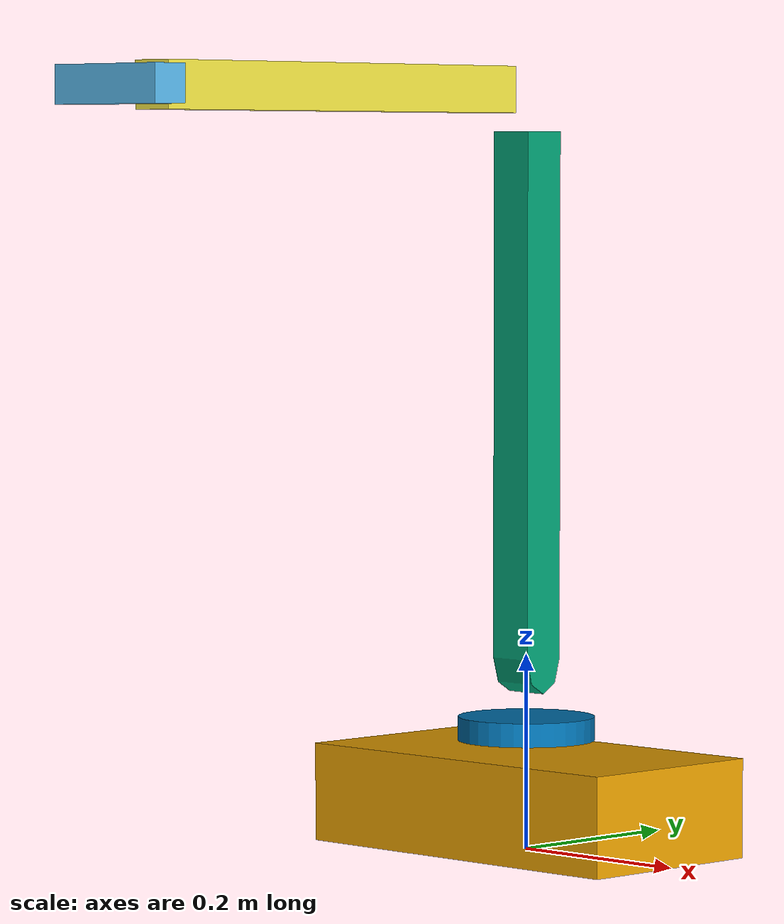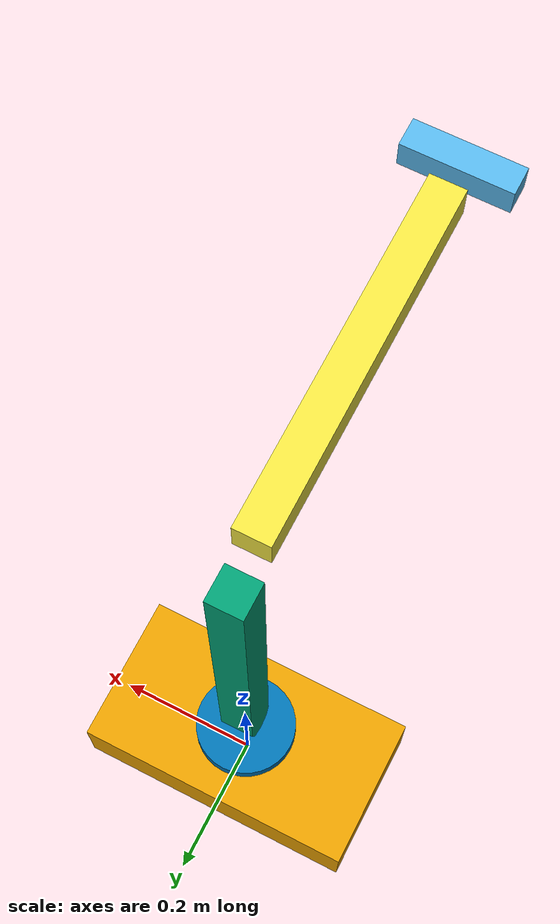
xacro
<?xml version="1.0"?>
<robot xmlns:xacro="http://www.ros.org/wiki/xacro" name="stick_rm_two">
    <xacro:arg name="initial_positions_file" default="initial_positions.yaml" />

    <!-- Import stick_rm_two urdf file -->
    <xacro:include filename="$(find stick_rm)/urdf/stick_rm_two.urdf" />

    <!-- Import control_xacro -->
    <xacro:include filename="stick_rm_two.ros2_control.xacro" />

    <xacro:stick_rm_two_ros2_control name="FakeSystem" initial_positions_file="$(arg initial_positions_file)"/>

</robot>

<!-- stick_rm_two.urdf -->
<robot name="stick_rm_two" version="1.0">

  <joint name="end_link_joint" type="revolute">
    <limit lower="-3.14000" upper="3.14000" effort="0.00000" velocity="0.00000"/>
    <origin rpy="0.00000 0.00000 0.00000" xyz="0.00000 -0.50000 0.02500"/>
    <parent link="link2_link"/>
    <child link="end_link"/>
    <axis xyz="1.00000 0.00000 0.00000"/>
  </joint>

  <joint name="link1_link_joint" type="revolute">
    <limit lower="-0.50000" upper="1.20000" effort="0.00000" velocity="0.00000"/>
    <origin rpy="0.00000 0.00000 0.00000" xyz="0.00000 0.00000 0.02551"/>
    <parent link="swivel_link"/>
    <child link="link1_link"/>
    <axis xyz="1.00000 0.00000 0.00000"/>
  </joint>

  <joint name="link2_link_joint" type="revolute">
    <limit lower="-1.50000" upper="1.10000" effort="0.00000" velocity="0.00000"/>
    <origin rpy="0.00000 0.00000 0.00000" xyz="0.00000 -0.02500 0.60000"/>
    <parent link="link1_link"/>
    <child link="link2_link"/>
    <axis xyz="1.00000 0.00000 0.00000"/>
  </joint>

  <joint name="swivel_link_joint" type="revolute">
    <limit lower="-1.57000" upper="1.57000" effort="0.00000" velocity="0.00000"/>
    <origin rpy="0.00000 0.00000 0.00000" xyz="0.00000 0.00000 0.12440"/>
    <parent link="body_link"/>
    <child link="swivel_link"/>
    <axis xyz="0.00000 0.00000 1.00000"/>
  </joint>

  <link name="body_link">
    <collision>
      <geometry>
        <mesh filename="package://stick_rm/meshes/stl/Cube.017.stl"/>
      </geometry>
    </collision>
    <visual>
      <geometry>
        <mesh filename="package://stick_rm/meshes/stl/Cube.010.stl"/>
      </geometry>
    </visual>
  </link>

  <link name="end_link">
    <collision>
      <geometry>
        <mesh filename="package://stick_rm/meshes/stl/Cube.001.stl" scale="0.80840 0.80840 0.80840"/>
      </geometry>
    </collision>
    <visual>
      <geometry>
        <mesh filename="package://stick_rm/meshes/stl/Cube.stl"/>
      </geometry>
    </visual>
  </link>

  <link name="link1_link">
    <collision>
      <geometry>
        <mesh filename="package://stick_rm/meshes/stl/Cube.016.stl"/>
      </geometry>
    </collision>
    <visual>
      <geometry>
        <mesh filename="package://stick_rm/meshes/stl/Cube.003.stl"/>
      </geometry>
    </visual>
  </link>

  <link name="link2_link">
    <collision>
      <geometry>
        <mesh filename="package://stick_rm/meshes/stl/Cube.015.stl"/>
      </geometry>
    </collision>
    <visual>
      <geometry>
        <mesh filename="package://stick_rm/meshes/stl/Cube.004.stl"/>
      </geometry>
    </visual>
  </link>

  <link name="swivel_link">
    <collision>
      <geometry>
        <mesh filename="package://stick_rm/meshes/stl/Circle.002.stl" scale="0.12364 0.12364 0.12364"/>
      </geometry>
    </collision>
    <visual>
      <geometry>
        <mesh filename="package://stick_rm/meshes/stl/Circle.001.stl" scale="0.12364 0.12364 0.12364"/>
      </geometry>
    </visual>
  </link>

</robot>
